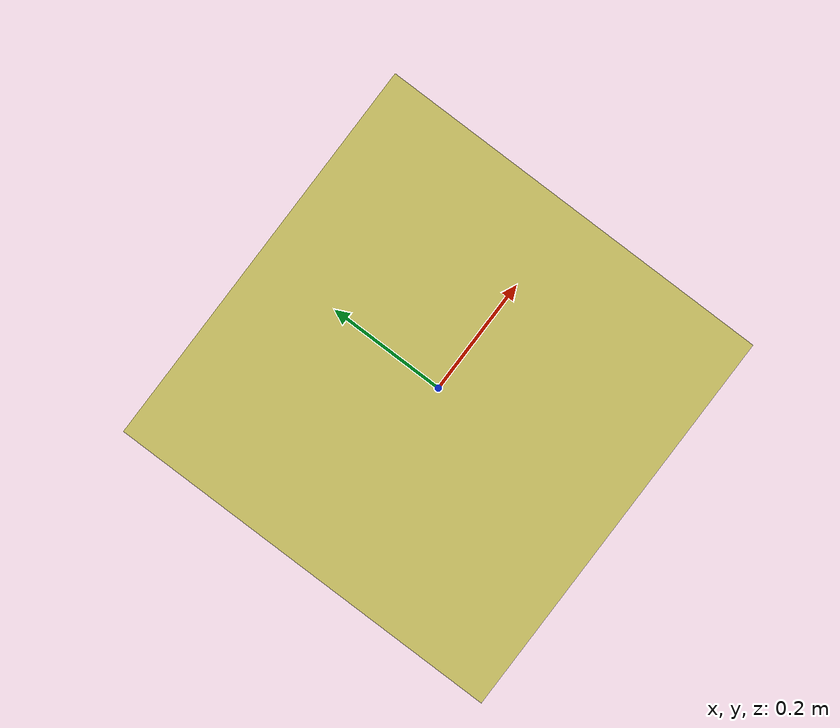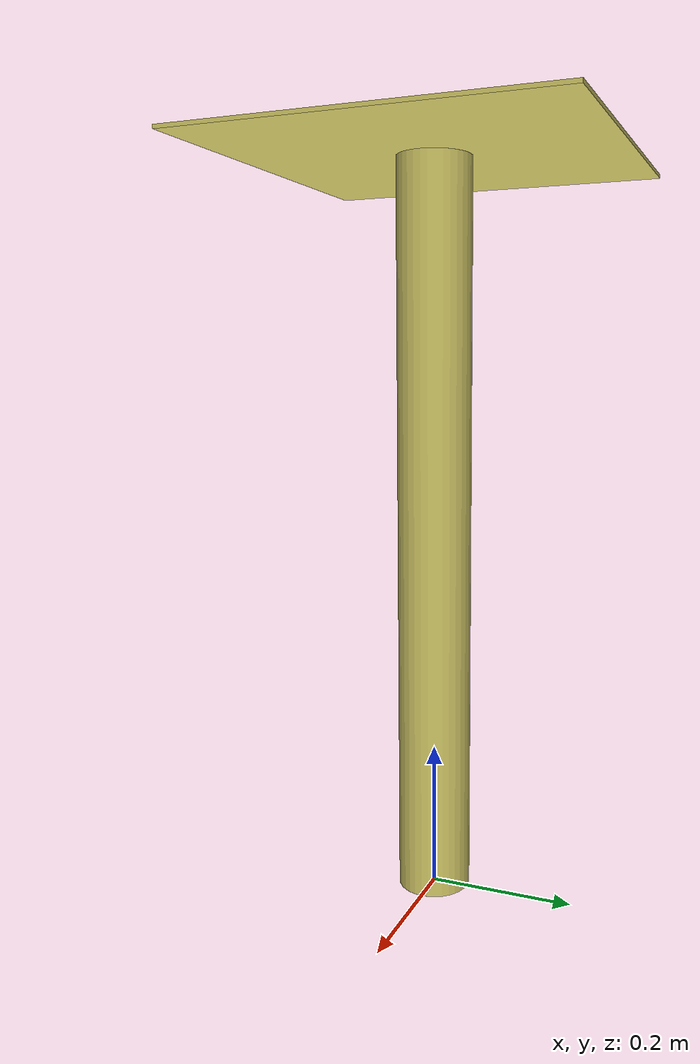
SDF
<?xml version="1.0"?>
<sdf version="1.6">
  <model name="task3_50_x_50">
    <pose>0 0 0 0 0 0</pose>
    <static>true</static>
    <link name="link">

      <!-- Visualización del modelo -->
      <visual name="visual">
        <geometry>
          <mesh>
            <uri>model://task3_50_x_50/meshes/task3_50_x_50.dae</uri>
            <scale>1 1 1</scale>
          </mesh>
        </geometry>
      </visual>

      <!-- Colisión usando el mismo modelo DAE -->
      <collision name="collision">
        <geometry>
          <mesh>
            <uri>model://task3_50_x_50/meshes/task3_50_x_50.dae</uri>
            <scale>1 1 1</scale>
          </mesh>
        </geometry>
      </collision>

    </link>
  </model>
</sdf>
